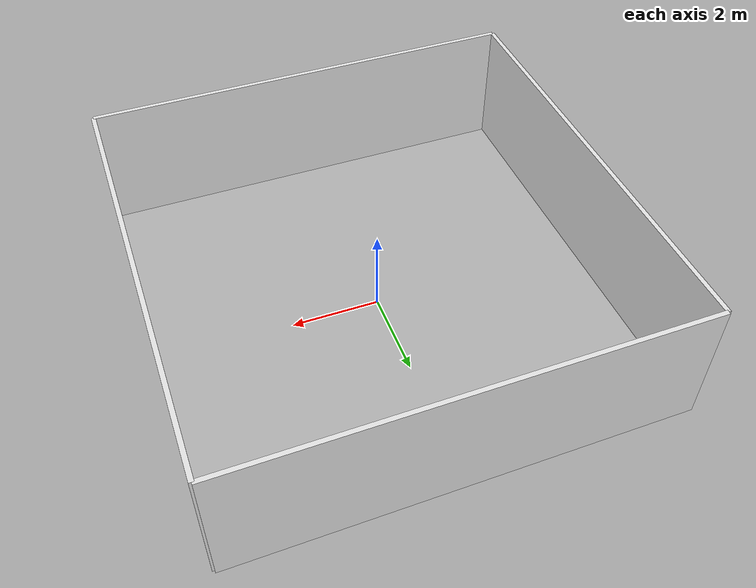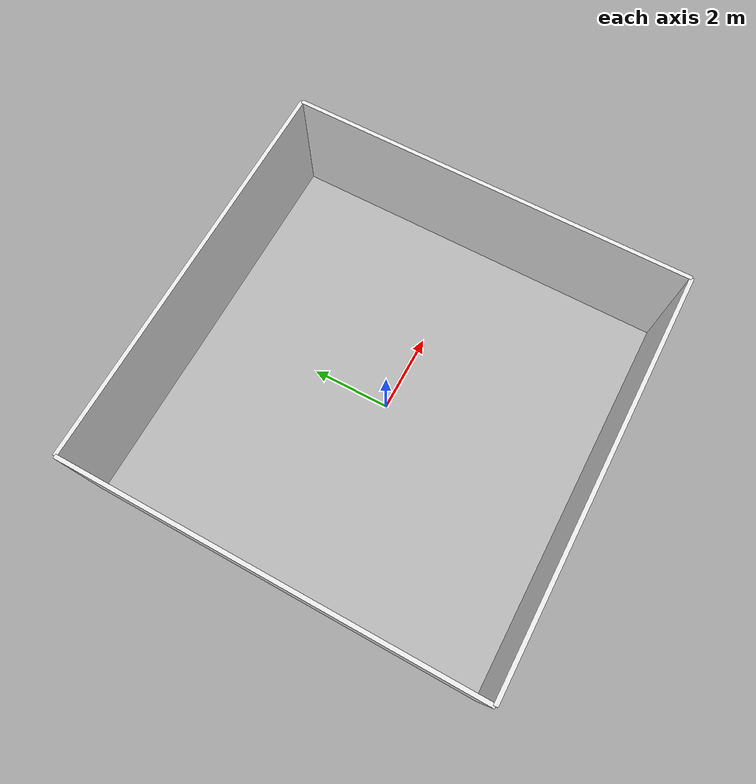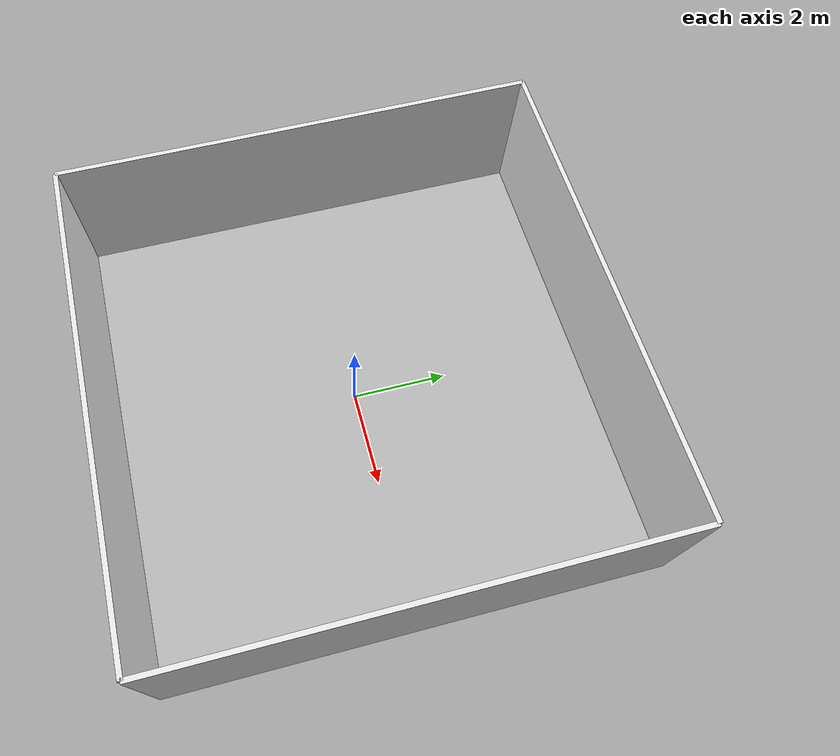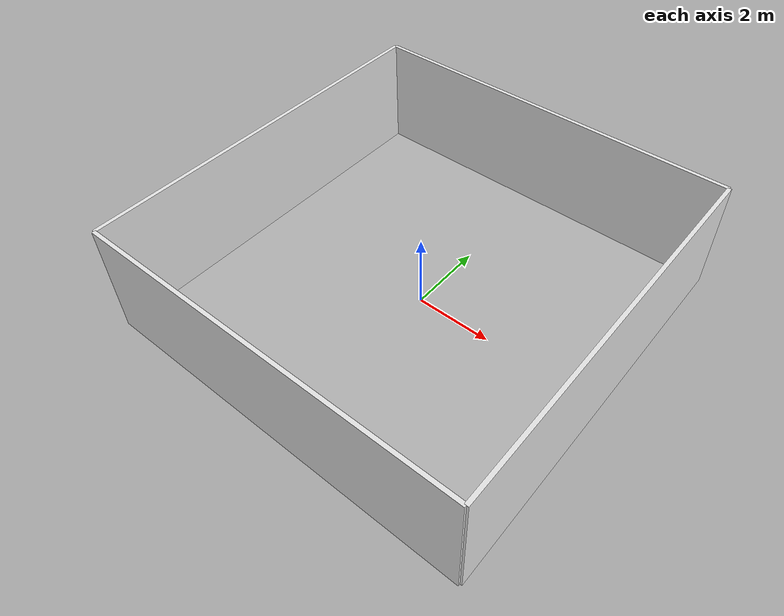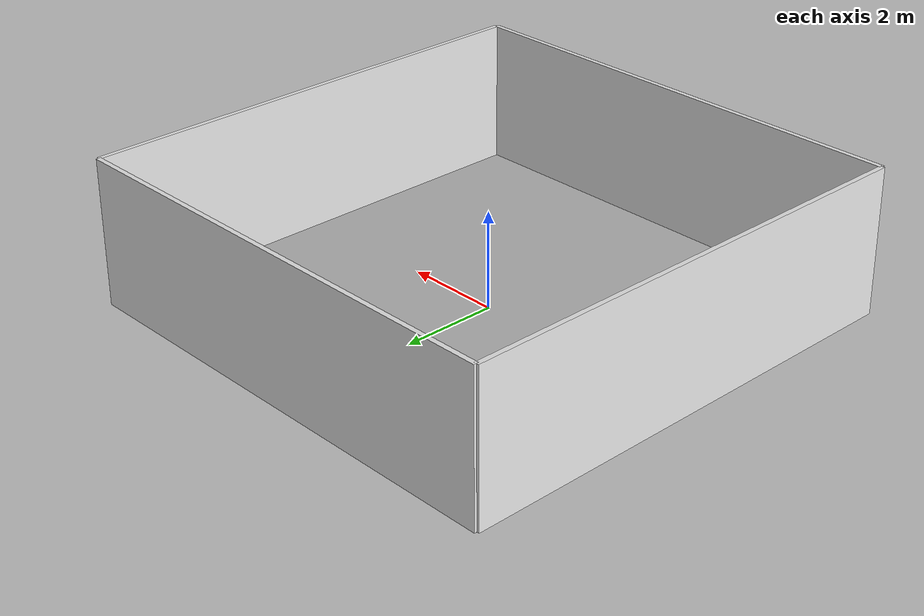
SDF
<?xml version="1.0"?>
<sdf version="1.7">
  <world name="room">

    <!-- Gravity -->
    <gravity>0 0 -9.81</gravity>

    <!-- Scene -->
    <scene>
      <ambient>0.4 0.4 0.4 1</ambient>
      <background>0.9 0.9 0.9 1</background>
      <shadows>true</shadows>
    </scene>

    <!-- Physics -->
    <physics name="physics" type="ode">
      <max_step_size>0.001</max_step_size>
      <real_time_factor>1.0</real_time_factor>
    </physics>

    <!-- Sun light -->
    <light name="sun" type="directional">
      <pose>0 0 10 0 0 0</pose>
      <diffuse>0.8 0.8 0.8 1</diffuse>
      <specular>0.2 0.2 0.2 1</specular>
      <direction>-0.5 0.1 -1</direction>
      <cast_shadows>true</cast_shadows>
    </light>

    <!-- ================= FLOOR ================= -->
    <model name="floor">
      <static>true</static>
      <link name="link">
        <collision name="collision">
          <geometry>
            <plane>
              <normal>0 0 1</normal>
              <size>10 10</size>
            </plane>
          </geometry>
        </collision>
        <visual name="visual">
          <geometry>
            <plane>
              <normal>0 0 1</normal>
              <size>10 10</size>
            </plane>
          </geometry>
          <material>
            <ambient>0.7 0.7 0.7 1</ambient>
            <diffuse>0.7 0.7 0.7 1</diffuse>
          </material>
        </visual>
      </link>
    </model>

    <!-- ================= WALLS ================= -->
    <!-- Back wall -->
    <model name="wall_back">
      <static>true</static>
      <pose>0 -5 1.5 0 0 0</pose>
      <link name="link">
        <collision name="collision">
          <geometry>
            <box>
              <size>10 0.1 3</size>
            </box>
          </geometry>
        </collision>
        <visual name="visual">
          <geometry>
            <box>
              <size>10 0.1 3</size>
            </box>
          </geometry>
          <material>
            <ambient>0.9 0.9 0.9 1</ambient>
            <diffuse>0.9 0.9 0.9 1</diffuse>
          </material>
        </visual>
      </link>
    </model>

    <!-- Left wall -->
    <model name="wall_left">
      <static>true</static>
      <pose>-5 0 1.5 0 0 0</pose>
      <link name="link">
        <collision name="collision">
          <geometry>
            <box>
              <size>0.1 10 3</size>
            </box>
          </geometry>
        </collision>
        <visual name="visual">
          <geometry>
            <box>
              <size>0.1 10 3</size>
            </box>
          </geometry>
          <material>
            <ambient>0.9 0.9 0.9 1</ambient>
            <diffuse>0.9 0.9 0.9 1</diffuse>
          </material>
        </visual>
      </link>
    </model>

    <!-- Right wall -->
    <model name="wall_right">
      <static>true</static>
      <pose>5 0 1.5 0 0 0</pose>
      <link name="link">
        <collision name="collision">
          <geometry>
            <box>
              <size>0.1 10 3</size>
            </box>
          </geometry>
        </collision>
        <visual name="visual">
          <geometry>
            <box>
              <size>0.1 10 3</size>
            </box>
          </geometry>
          <material>
            <ambient>0.9 0.9 0.9 1</ambient>
            <diffuse>0.9 0.9 0.9 1</diffuse>
          </material>
        </visual>
      </link>
    </model>

    <!-- Front wall -->
    <model name="wall_front">
      <static>true</static>
      <pose>0 5 1.5 0 0 0</pose>
      <link name="link">
        <collision name="collision">
          <geometry>
            <box>
              <size>10 0.1 3</size>
            </box>
          </geometry>
        </collision>
        <visual name="visual">
          <geometry>
            <box>
              <size>10 0.1 3</size>
            </box>
          </geometry>
          <material>
            <ambient>0.9 0.9 0.9 1</ambient>
            <diffuse>0.9 0.9 0.9 1</diffuse>
          </material>
        </visual>
      </link>
    </model>

    <!-- ================= REQUIRED SYSTEMS ================= -->
    <plugin filename="libignition-gazebo-physics-system.so"
            name="ignition::gazebo::systems::Physics"/>

    <plugin filename="libignition-gazebo-user-commands-system.so"
            name="ignition::gazebo::systems::UserCommands"/>

    <plugin filename="libignition-gazebo-scene-broadcaster-system.so"
            name="ignition::gazebo::systems::SceneBroadcaster"/>

    <!-- Sensors system -->
    <plugin filename="libignition-gazebo-sensors-system.so"
            name="ignition::gazebo::systems::Sensors">
      <render_engine>ogre2</render_engine>
    </plugin>

  </world>
</sdf>
